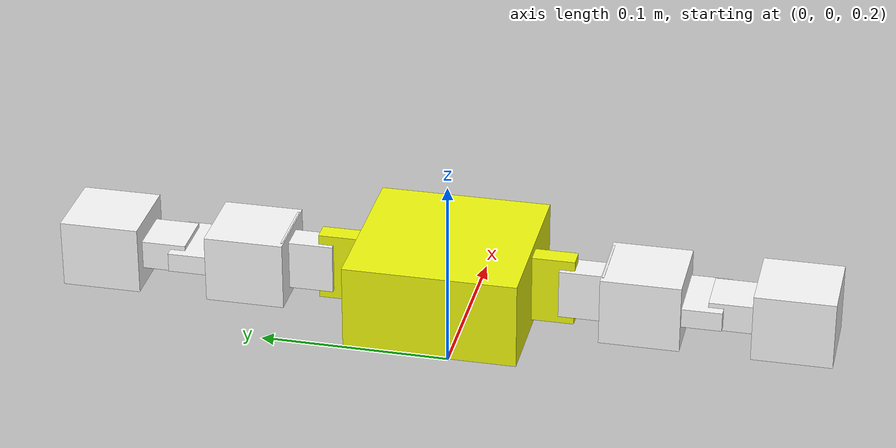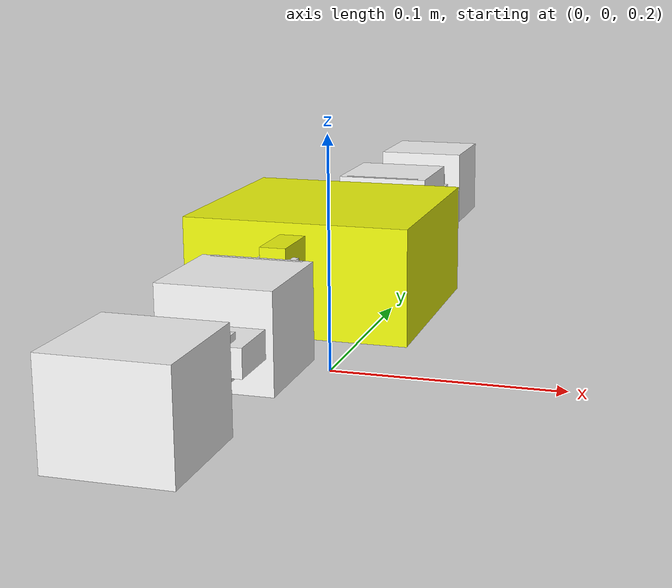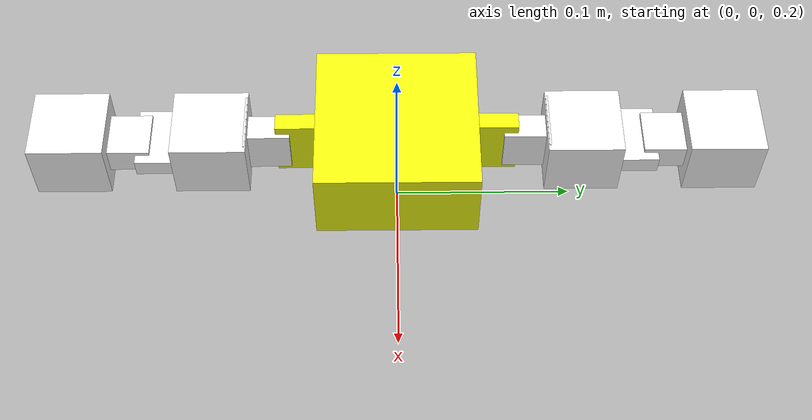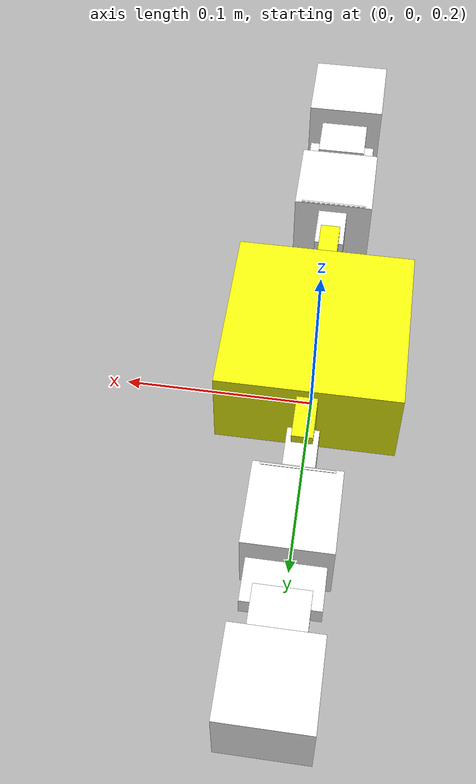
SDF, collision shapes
<?xml version="1.0" encoding="UTF-8"?>
<sdf version="1.6">
  <model name="example_snake">
    <pose>0.000000e+00 0.000000e+00 2.500000e-01 0.000000e+00 -0.000000e+00 0.000000e+00</pose>
    <joint name="component_S_ActiveHinge__joint" type="revolute">
      <pose>-9.430986e-18 3.110825e-02 -1.755849e-17 1.570796e+00 -3.330669e-16 -1.570796e+00</pose>
      <parent>Core</parent>
      <child>S_Leg</child>
      <axis>
        <xyz>0.000000e+00 1.000000e+00 0.000000e+00</xyz>
        <use_parent_model_frame>0</use_parent_model_frame>
        <limit>
          <lower>-7.853982e-01</lower>
          <upper>7.853982e-01</upper>
          <effort>1.765800e-01</effort>
          <velocity>5.235988e+00</velocity>
        </limit>
      </axis>
    </joint>
    <joint name="component_SNN_ActiveHinge__joint" type="revolute">
      <pose>-1.300223e-17 2.747656e-02 -1.539957e-17 -9.420555e-16 -6.280370e-16 -1.570796e+00</pose>
      <parent>S_Leg</parent>
      <child>SNN_Leg</child>
      <axis>
        <xyz>0.000000e+00 1.000000e+00 0.000000e+00</xyz>
        <use_parent_model_frame>0</use_parent_model_frame>
        <limit>
          <lower>-7.853982e-01</lower>
          <upper>7.853982e-01</upper>
          <effort>1.765800e-01</effort>
          <velocity>5.235988e+00</velocity>
        </limit>
      </axis>
    </joint>
    <joint name="component_N_ActiveHinge__joint" type="revolute">
      <pose>-8.717806e-18 -3.110825e-02 1.048457e-17 1.570796e+00 3.330669e-16 1.570796e+00</pose>
      <parent>Core</parent>
      <child>N_Leg</child>
      <axis>
        <xyz>0.000000e+00 1.000000e+00 0.000000e+00</xyz>
        <use_parent_model_frame>0</use_parent_model_frame>
        <limit>
          <lower>-7.853982e-01</lower>
          <upper>7.853982e-01</upper>
          <effort>1.765800e-01</effort>
          <velocity>5.235988e+00</velocity>
        </limit>
      </axis>
    </joint>
    <joint name="component_NNN_ActiveHinge__joint" type="revolute">
      <pose>1.194569e-17 -2.747656e-02 1.294222e-17 -4.710277e-16 4.710277e-16 1.570796e+00</pose>
      <parent>N_Leg</parent>
      <child>NNN_Leg</child>
      <axis>
        <xyz>0.000000e+00 1.000000e+00 0.000000e+00</xyz>
        <use_parent_model_frame>0</use_parent_model_frame>
        <limit>
          <lower>-7.853982e-01</lower>
          <upper>7.853982e-01</upper>
          <effort>1.765800e-01</effort>
          <velocity>5.235988e+00</velocity>
        </limit>
      </axis>
    </joint>
    <link name="Core">
      <pose>8.891294e-20 0.000000e+00 0.000000e+00 0.000000e+00 -0.000000e+00 0.000000e+00</pose>
      <self_collide>True</self_collide>
      <sensor name="core-imu_sensor" type="imu">
        <pose>-8.891294e-20 0.000000e+00 0.000000e+00 0.000000e+00 -0.000000e+00 0.000000e+00</pose>
        <always_on>True</always_on>
      </sensor>
      <visual name="component__CoreComponent__box_visual">
        <pose>-8.891294e-20 0.000000e+00 0.000000e+00 0.000000e+00 -0.000000e+00 0.000000e+00</pose>
        <material>
          <ambient>0.94 0.98 0.05 1.0</ambient>
          <diffuse>0.94 0.98 0.05 1.0</diffuse>
          <specular>0.1 0.1 0.1 1.0</specular>
        </material>
        <geometry>
          <mesh>
            <uri>model://rg_robot/meshes/CoreComponent.dae</uri>
          </mesh>
        </geometry>
      </visual>
      <collision name="component__CoreComponent__box_collision">
        <pose>-8.891294e-20 0.000000e+00 0.000000e+00 0.000000e+00 -0.000000e+00 0.000000e+00</pose>
        <surface>
          <contact>
            <ode>
              <kd>3.333333e+06</kd>
              <kp>9.000000e+04</kp>
            </ode>
          </contact>
          <friction>
            <ode>
              <mu>1.000000e+00</mu>
              <mu2>1.000000e+00</mu2>
              <slip1>1.000000e-02</slip1>
              <slip2>1.000000e-02</slip2>
            </ode>
            <bullet>
              <friction>1.000000e+00</friction>
              <friction2>1.000000e+00</friction2>
            </bullet>
          </friction>
        </surface>
        <geometry>
          <box>
            <size>8.900000e-02 8.900000e-02 4.500000e-02</size>
          </box>
        </geometry>
      </collision>
      <visual name="component_S_ActiveHinge__frame_visual">
        <pose>2.353578e-18 -5.550000e-02 6.106227e-19 1.570796e+00 -5.551115e-17 -1.570796e+00</pose>
        <material>
          <ambient>0.98 0.98 0.98 1.0</ambient>
          <diffuse>0.98 0.98 0.98 1.0</diffuse>
          <specular>0.1 0.1 0.1 1.0</specular>
        </material>
        <geometry>
          <mesh>
            <uri>model://rg_robot/meshes/ActiveHinge_Frame.dae</uri>
          </mesh>
        </geometry>
      </visual>
      <collision name="component_S_ActiveHinge__frame_collision">
        <pose>2.353578e-18 -5.550000e-02 6.106227e-19 1.570796e+00 -5.551115e-17 -1.570796e+00</pose>
        <surface>
          <contact>
            <ode>
              <kd>3.333333e+06</kd>
              <kp>9.000000e+04</kp>
            </ode>
          </contact>
          <friction>
            <ode>
              <mu>1.000000e+00</mu>
              <mu2>1.000000e+00</mu2>
              <slip1>1.000000e-02</slip1>
              <slip2>1.000000e-02</slip2>
            </ode>
            <bullet>
              <friction>1.000000e+00</friction>
              <friction2>1.000000e+00</friction2>
            </bullet>
          </friction>
        </surface>
        <geometry>
          <box>
            <size>2.200000e-02 3.575000e-02 1.000000e-02</size>
          </box>
        </geometry>
      </collision>
      <visual name="component_N_ActiveHinge__frame_visual">
        <pose>2.353578e-18 5.550000e-02 -6.106227e-19 1.570796e+00 5.551115e-17 1.570796e+00</pose>
        <material>
          <ambient>0.98 0.98 0.98 1.0</ambient>
          <diffuse>0.98 0.98 0.98 1.0</diffuse>
          <specular>0.1 0.1 0.1 1.0</specular>
        </material>
        <geometry>
          <mesh>
            <uri>model://rg_robot/meshes/ActiveHinge_Frame.dae</uri>
          </mesh>
        </geometry>
      </visual>
      <collision name="component_N_ActiveHinge__frame_collision">
        <pose>2.353578e-18 5.550000e-02 -6.106227e-19 1.570796e+00 5.551115e-17 1.570796e+00</pose>
        <surface>
          <contact>
            <ode>
              <kd>3.333333e+06</kd>
              <kp>9.000000e+04</kp>
            </ode>
          </contact>
          <friction>
            <ode>
              <mu>1.000000e+00</mu>
              <mu2>1.000000e+00</mu2>
              <slip1>1.000000e-02</slip1>
              <slip2>1.000000e-02</slip2>
            </ode>
            <bullet>
              <friction>1.000000e+00</friction>
              <friction2>1.000000e+00</friction2>
            </bullet>
          </friction>
        </surface>
        <geometry>
          <box>
            <size>2.200000e-02 3.575000e-02 1.000000e-02</size>
          </box>
        </geometry>
      </collision>
    </link>
    <link name="S_Leg">
      <pose>1.332232e-17 -9.125825e-02 1.946807e-17 0.000000e+00 -0.000000e+00 0.000000e+00</pose>
      <self_collide>True</self_collide>
      <visual name="component_S_ActiveHinge__servo_visual">
        <pose>-6.599917e-18 2.260825e-02 -1.472742e-17 1.570796e+00 -3.330669e-16 -1.570796e+00</pose>
        <material>
          <ambient>0.98 0.98 0.98 1.0</ambient>
          <diffuse>0.98 0.98 0.98 1.0</diffuse>
          <specular>0.1 0.1 0.1 1.0</specular>
        </material>
        <geometry>
          <mesh>
            <uri>model://rg_robot/meshes/ActiveCardanHinge_Servo_Holder.dae</uri>
          </mesh>
        </geometry>
      </visual>
      <collision name="component_S_ActiveHinge__servo_collision">
        <pose>-5.808883e-18 2.023325e-02 -1.393639e-17 1.570796e+00 -3.330669e-16 -1.570796e+00</pose>
        <surface>
          <contact>
            <ode>
              <kd>3.333333e+06</kd>
              <kp>9.000000e+04</kp>
            </ode>
          </contact>
          <friction>
            <ode>
              <mu>1.000000e+00</mu>
              <mu2>1.000000e+00</mu2>
              <slip1>1.000000e-02</slip1>
              <slip2>1.000000e-02</slip2>
            </ode>
            <bullet>
              <friction>1.000000e+00</friction>
              <friction2>1.000000e+00</friction2>
            </bullet>
          </friction>
        </surface>
        <geometry>
          <box>
            <size>2.450000e-02 2.575000e-02 1.500000e-02</size>
          </box>
        </geometry>
      </collision>
      <collision name="component_S_ActiveHinge__servo2_collision">
        <pose>-1.451258e-18 8.483254e-03 1.000000e-03 1.570796e+00 -3.330669e-16 -1.570796e+00</pose>
        <surface>
          <contact>
            <ode>
              <kd>3.333333e+06</kd>
              <kp>9.000000e+04</kp>
            </ode>
          </contact>
          <friction>
            <ode>
              <mu>1.000000e+00</mu>
              <mu2>1.000000e+00</mu2>
              <slip1>1.000000e-02</slip1>
              <slip2>1.000000e-02</slip2>
            </ode>
            <bullet>
              <friction>1.000000e+00</friction>
              <friction2>1.000000e+00</friction2>
            </bullet>
          </friction>
        </surface>
        <geometry>
          <box>
            <size>1.000000e-03 3.400000e-02 3.400000e-02</size>
          </box>
        </geometry>
      </collision>
      <visual name="component_SN_FixedBrick__box_visual">
        <pose>3.017390e-18 -1.101675e-02 7.019074e-18 8.881784e-16 -6.661338e-16 -3.141593e+00</pose>
        <material>
          <ambient>0.94 0.98 0.05 1.0</ambient>
          <diffuse>0.94 0.98 0.05 1.0</diffuse>
          <specular>0.1 0.1 0.1 1.0</specular>
        </material>
        <geometry>
          <mesh>
            <uri>model://rg_robot/meshes/FixedBrick.dae</uri>
          </mesh>
        </geometry>
      </visual>
      <collision name="component_SN_FixedBrick__box_collision">
        <pose>3.017390e-18 -1.101675e-02 7.019074e-18 8.881784e-16 -6.661338e-16 -3.141593e+00</pose>
        <surface>
          <contact>
            <ode>
              <kd>3.333333e+06</kd>
              <kp>9.000000e+04</kp>
            </ode>
          </contact>
          <friction>
            <ode>
              <mu>1.000000e+00</mu>
              <mu2>1.000000e+00</mu2>
              <slip1>1.000000e-02</slip1>
              <slip2>1.000000e-02</slip2>
            </ode>
            <bullet>
              <friction>1.000000e+00</friction>
              <friction2>1.000000e+00</friction2>
            </bullet>
          </friction>
        </surface>
        <geometry>
          <box>
            <size>4.100000e-02 4.100000e-02 3.550000e-02</size>
          </box>
        </geometry>
      </collision>
      <visual name="component_SNN_ActiveHinge__frame_visual">
        <pose>1.264857e-17 -4.101675e-02 3.166642e-17 -7.065416e-16 -7.065416e-16 -1.570796e+00</pose>
        <material>
          <ambient>0.98 0.98 0.98 1.0</ambient>
          <diffuse>0.98 0.98 0.98 1.0</diffuse>
          <specular>0.1 0.1 0.1 1.0</specular>
        </material>
        <geometry>
          <mesh>
            <uri>model://rg_robot/meshes/ActiveHinge_Frame.dae</uri>
          </mesh>
        </geometry>
      </visual>
      <collision name="component_SNN_ActiveHinge__frame_collision">
        <pose>1.264857e-17 -4.101675e-02 3.166642e-17 -7.065416e-16 -7.065416e-16 -1.570796e+00</pose>
        <surface>
          <contact>
            <ode>
              <kd>3.333333e+06</kd>
              <kp>9.000000e+04</kp>
            </ode>
          </contact>
          <friction>
            <ode>
              <mu>1.000000e+00</mu>
              <mu2>1.000000e+00</mu2>
              <slip1>1.000000e-02</slip1>
              <slip2>1.000000e-02</slip2>
            </ode>
            <bullet>
              <friction>1.000000e+00</friction>
              <friction2>1.000000e+00</friction2>
            </bullet>
          </friction>
        </surface>
        <geometry>
          <box>
            <size>2.200000e-02 3.575000e-02 1.000000e-02</size>
          </box>
        </geometry>
      </collision>
    </link>
    <link name="SNN_Leg">
      <pose>4.103813e-17 -1.644016e-01 6.952509e-17 0.000000e+00 -0.000000e+00 0.000000e+00</pose>
      <self_collide>True</self_collide>
      <visual name="component_SNN_ActiveHinge__servo_visual">
        <pose>-9.227468e-18 1.897656e-02 -1.006126e-17 -9.420555e-16 -6.280370e-16 -1.570796e+00</pose>
        <material>
          <ambient>0.98 0.98 0.98 1.0</ambient>
          <diffuse>0.98 0.98 0.98 1.0</diffuse>
          <specular>0.1 0.1 0.1 1.0</specular>
        </material>
        <geometry>
          <mesh>
            <uri>model://rg_robot/meshes/ActiveCardanHinge_Servo_Holder.dae</uri>
          </mesh>
        </geometry>
      </visual>
      <collision name="component_SNN_ActiveHinge__servo_collision">
        <pose>-8.172756e-18 1.660156e-02 -8.569672e-18 -9.420555e-16 -6.280370e-16 -1.570796e+00</pose>
        <surface>
          <contact>
            <ode>
              <kd>3.333333e+06</kd>
              <kp>9.000000e+04</kp>
            </ode>
          </contact>
          <friction>
            <ode>
              <mu>1.000000e+00</mu>
              <mu2>1.000000e+00</mu2>
              <slip1>1.000000e-02</slip1>
              <slip2>1.000000e-02</slip2>
            </ode>
            <bullet>
              <friction>1.000000e+00</friction>
              <friction2>1.000000e+00</friction2>
            </bullet>
          </friction>
        </surface>
        <geometry>
          <box>
            <size>2.450000e-02 2.575000e-02 1.500000e-02</size>
          </box>
        </geometry>
      </collision>
      <collision name="component_SNN_ActiveHinge__servo2_collision">
        <pose>1.000000e-03 4.851562e-03 -2.132293e-18 -9.420555e-16 -6.280370e-16 -1.570796e+00</pose>
        <surface>
          <contact>
            <ode>
              <kd>3.333333e+06</kd>
              <kp>9.000000e+04</kp>
            </ode>
          </contact>
          <friction>
            <ode>
              <mu>1.000000e+00</mu>
              <mu2>1.000000e+00</mu2>
              <slip1>1.000000e-02</slip1>
              <slip2>1.000000e-02</slip2>
            </ode>
            <bullet>
              <friction>1.000000e+00</friction>
              <friction2>1.000000e+00</friction2>
            </bullet>
          </friction>
        </surface>
        <geometry>
          <box>
            <size>1.000000e-03 3.400000e-02 3.400000e-02</size>
          </box>
        </geometry>
      </collision>
      <visual name="component_SNNN_FixedBrick__box_visual">
        <pose>7.211255e-18 -1.464844e-02 7.561476e-18 4.440892e-16 -9.420555e-16 -3.141593e+00</pose>
        <material>
          <ambient>0.94 0.98 0.05 1.0</ambient>
          <diffuse>0.94 0.98 0.05 1.0</diffuse>
          <specular>0.1 0.1 0.1 1.0</specular>
        </material>
        <geometry>
          <mesh>
            <uri>model://rg_robot/meshes/FixedBrick.dae</uri>
          </mesh>
        </geometry>
      </visual>
      <collision name="component_SNNN_FixedBrick__box_collision">
        <pose>7.211255e-18 -1.464844e-02 7.561476e-18 4.440892e-16 -9.420555e-16 -3.141593e+00</pose>
        <surface>
          <contact>
            <ode>
              <kd>3.333333e+06</kd>
              <kp>9.000000e+04</kp>
            </ode>
          </contact>
          <friction>
            <ode>
              <mu>1.000000e+00</mu>
              <mu2>1.000000e+00</mu2>
              <slip1>1.000000e-02</slip1>
              <slip2>1.000000e-02</slip2>
            </ode>
            <bullet>
              <friction>1.000000e+00</friction>
              <friction2>1.000000e+00</friction2>
            </bullet>
          </friction>
        </surface>
        <geometry>
          <box>
            <size>4.100000e-02 4.100000e-02 3.550000e-02</size>
          </box>
        </geometry>
      </collision>
    </link>
    <link name="N_Leg">
      <pose>1.260914e-17 9.125825e-02 -1.239415e-17 0.000000e+00 -0.000000e+00 0.000000e+00</pose>
      <self_collide>True</self_collide>
      <visual name="component_N_ActiveHinge__servo_visual">
        <pose>-5.886737e-18 -2.260825e-02 7.653500e-18 1.570796e+00 3.330669e-16 1.570796e+00</pose>
        <material>
          <ambient>0.98 0.98 0.98 1.0</ambient>
          <diffuse>0.98 0.98 0.98 1.0</diffuse>
          <specular>0.1 0.1 0.1 1.0</specular>
        </material>
        <geometry>
          <mesh>
            <uri>model://rg_robot/meshes/ActiveCardanHinge_Servo_Holder.dae</uri>
          </mesh>
        </geometry>
      </visual>
      <collision name="component_N_ActiveHinge__servo_collision">
        <pose>-5.095703e-18 -2.023325e-02 6.862466e-18 1.570796e+00 3.330669e-16 1.570796e+00</pose>
        <surface>
          <contact>
            <ode>
              <kd>3.333333e+06</kd>
              <kp>9.000000e+04</kp>
            </ode>
          </contact>
          <friction>
            <ode>
              <mu>1.000000e+00</mu>
              <mu2>1.000000e+00</mu2>
              <slip1>1.000000e-02</slip1>
              <slip2>1.000000e-02</slip2>
            </ode>
            <bullet>
              <friction>1.000000e+00</friction>
              <friction2>1.000000e+00</friction2>
            </bullet>
          </friction>
        </surface>
        <geometry>
          <box>
            <size>2.450000e-02 2.575000e-02 1.500000e-02</size>
          </box>
        </geometry>
      </collision>
      <collision name="component_N_ActiveHinge__servo2_collision">
        <pose>-1.626256e-18 -8.483254e-03 1.000000e-03 1.570796e+00 3.330669e-16 1.570796e+00</pose>
        <surface>
          <contact>
            <ode>
              <kd>3.333333e+06</kd>
              <kp>9.000000e+04</kp>
            </ode>
          </contact>
          <friction>
            <ode>
              <mu>1.000000e+00</mu>
              <mu2>1.000000e+00</mu2>
              <slip1>1.000000e-02</slip1>
              <slip2>1.000000e-02</slip2>
            </ode>
            <bullet>
              <friction>1.000000e+00</friction>
              <friction2>1.000000e+00</friction2>
            </bullet>
          </friction>
        </surface>
        <geometry>
          <box>
            <size>1.000000e-03 3.400000e-02 3.400000e-02</size>
          </box>
        </geometry>
      </collision>
      <visual name="component_NN_FixedBrick__box_visual">
        <pose>3.245202e-18 1.101675e-02 -3.545875e-18 -3.330669e-16 -6.661338e-16 -2.242545e-16</pose>
        <material>
          <ambient>0.94 0.98 0.05 1.0</ambient>
          <diffuse>0.94 0.98 0.05 1.0</diffuse>
          <specular>0.1 0.1 0.1 1.0</specular>
        </material>
        <geometry>
          <mesh>
            <uri>model://rg_robot/meshes/FixedBrick.dae</uri>
          </mesh>
        </geometry>
      </visual>
      <collision name="component_NN_FixedBrick__box_collision">
        <pose>3.245202e-18 1.101675e-02 -3.545875e-18 -3.330669e-16 -6.661338e-16 -2.242545e-16</pose>
        <surface>
          <contact>
            <ode>
              <kd>3.333333e+06</kd>
              <kp>9.000000e+04</kp>
            </ode>
          </contact>
          <friction>
            <ode>
              <mu>1.000000e+00</mu>
              <mu2>1.000000e+00</mu2>
              <slip1>1.000000e-02</slip1>
              <slip2>1.000000e-02</slip2>
            </ode>
            <bullet>
              <friction>1.000000e+00</friction>
              <friction2>1.000000e+00</friction2>
            </bullet>
          </friction>
        </surface>
        <geometry>
          <box>
            <size>4.100000e-02 4.100000e-02 3.550000e-02</size>
          </box>
        </geometry>
      </collision>
      <visual name="component_NNN_ActiveHinge__frame_visual">
        <pose>7.506038e-18 4.101675e-02 -1.505545e-17 -4.710277e-16 4.710277e-16 1.570796e+00</pose>
        <material>
          <ambient>0.98 0.98 0.98 1.0</ambient>
          <diffuse>0.98 0.98 0.98 1.0</diffuse>
          <specular>0.1 0.1 0.1 1.0</specular>
        </material>
        <geometry>
          <mesh>
            <uri>model://rg_robot/meshes/ActiveHinge_Frame.dae</uri>
          </mesh>
        </geometry>
      </visual>
      <collision name="component_NNN_ActiveHinge__frame_collision">
        <pose>7.506038e-18 4.101675e-02 -1.505545e-17 -4.710277e-16 4.710277e-16 1.570796e+00</pose>
        <surface>
          <contact>
            <ode>
              <kd>3.333333e+06</kd>
              <kp>9.000000e+04</kp>
            </ode>
          </contact>
          <friction>
            <ode>
              <mu>1.000000e+00</mu>
              <mu2>1.000000e+00</mu2>
              <slip1>1.000000e-02</slip1>
              <slip2>1.000000e-02</slip2>
            </ode>
            <bullet>
              <friction>1.000000e+00</friction>
              <friction2>1.000000e+00</friction2>
            </bullet>
          </friction>
        </surface>
        <geometry>
          <box>
            <size>2.200000e-02 3.575000e-02 1.000000e-02</size>
          </box>
        </geometry>
      </collision>
    </link>
    <link name="NNN_Leg">
      <pose>6.504156e-18 1.644016e-01 -4.258211e-17 0.000000e+00 -0.000000e+00 0.000000e+00</pose>
      <self_collide>True</self_collide>
      <visual name="component_NNN_ActiveHinge__servo_visual">
        <pose>8.170927e-18 -1.897656e-02 8.938487e-18 -4.710277e-16 4.710277e-16 1.570796e+00</pose>
        <material>
          <ambient>0.98 0.98 0.98 1.0</ambient>
          <diffuse>0.98 0.98 0.98 1.0</diffuse>
          <specular>0.1 0.1 0.1 1.0</specular>
        </material>
        <geometry>
          <mesh>
            <uri>model://rg_robot/meshes/ActiveCardanHinge_Servo_Holder.dae</uri>
          </mesh>
        </geometry>
      </visual>
      <collision name="component_NNN_ActiveHinge__servo_collision">
        <pose>7.116215e-18 -1.660156e-02 7.819796e-18 -4.710277e-16 4.710277e-16 1.570796e+00</pose>
        <surface>
          <contact>
            <ode>
              <kd>3.333333e+06</kd>
              <kp>9.000000e+04</kp>
            </ode>
          </contact>
          <friction>
            <ode>
              <mu>1.000000e+00</mu>
              <mu2>1.000000e+00</mu2>
              <slip1>1.000000e-02</slip1>
              <slip2>1.000000e-02</slip2>
            </ode>
            <bullet>
              <friction>1.000000e+00</friction>
              <friction2>1.000000e+00</friction2>
            </bullet>
          </friction>
        </surface>
        <geometry>
          <box>
            <size>2.450000e-02 2.575000e-02 1.500000e-02</size>
          </box>
        </geometry>
      </collision>
      <collision name="component_NNN_ActiveHinge__servo2_collision">
        <pose>-1.000000e-03 -4.851562e-03 1.814193e-18 -4.710277e-16 4.710277e-16 1.570796e+00</pose>
        <surface>
          <contact>
            <ode>
              <kd>3.333333e+06</kd>
              <kp>9.000000e+04</kp>
            </ode>
          </contact>
          <friction>
            <ode>
              <mu>1.000000e+00</mu>
              <mu2>1.000000e+00</mu2>
              <slip1>1.000000e-02</slip1>
              <slip2>1.000000e-02</slip2>
            </ode>
            <bullet>
              <friction>1.000000e+00</friction>
              <friction2>1.000000e+00</friction2>
            </bullet>
          </friction>
        </surface>
        <geometry>
          <box>
            <size>1.000000e-03 3.400000e-02 3.400000e-02</size>
          </box>
        </geometry>
      </collision>
      <visual name="component_NNNN_FixedBrick__box_visual">
        <pose>-6.279013e-18 1.464844e-02 -6.899820e-18 -4.710277e-16 -4.440892e-16 4.186913e-16</pose>
        <material>
          <ambient>0.94 0.98 0.05 1.0</ambient>
          <diffuse>0.94 0.98 0.05 1.0</diffuse>
          <specular>0.1 0.1 0.1 1.0</specular>
        </material>
        <geometry>
          <mesh>
            <uri>model://rg_robot/meshes/FixedBrick.dae</uri>
          </mesh>
        </geometry>
      </visual>
      <collision name="component_NNNN_FixedBrick__box_collision">
        <pose>-6.279013e-18 1.464844e-02 -6.899820e-18 -4.710277e-16 -4.440892e-16 4.186913e-16</pose>
        <surface>
          <contact>
            <ode>
              <kd>3.333333e+06</kd>
              <kp>9.000000e+04</kp>
            </ode>
          </contact>
          <friction>
            <ode>
              <mu>1.000000e+00</mu>
              <mu2>1.000000e+00</mu2>
              <slip1>1.000000e-02</slip1>
              <slip2>1.000000e-02</slip2>
            </ode>
            <bullet>
              <friction>1.000000e+00</friction>
              <friction2>1.000000e+00</friction2>
            </bullet>
          </friction>
        </surface>
        <geometry>
          <box>
            <size>4.100000e-02 4.100000e-02 3.550000e-02</size>
          </box>
        </geometry>
      </collision>
    </link>
    <plugin filename="libRobotControlPlugin.so" name="robot_controller">
      <rv:robot_config xmlns:rv="https://github.com/ci-group/revolve">
        <rv:update_rate>8.000000e+00</rv:update_rate>
        <rv:brain>
          <rv:learner evaluation_rate="30.0" type="rlpower"/>
          <rv:controller type="spline"/>
          <rv:sensors>
            <rv:sensor id="Core_sensor" link="Core" part_id="Core" sensor="core-imu_sensor" type="imu"/>
          </rv:sensors>
          <rv:actuators>
            <rv:servomotor coordinates="-1;0" id="Leg00Joint__rotate" joint="component_S_ActiveHinge__joint" part_id="Leg00Joint" part_name="component_S_ActiveHinge__joint" type="position">
              <rv:pid>
                <rv:p>9.000000e-01</rv:p>
                <rv:i>0.000000e+00</rv:i>
                <rv:d>0.000000e+00</rv:d>
                <rv:i_max>0.000000e+00</rv:i_max>
                <rv:i_min>0.000000e+00</rv:i_min>
              </rv:pid>
            </rv:servomotor>
            <rv:servomotor coordinates="-3;0" id="Leg01Joint__rotate" joint="component_SNN_ActiveHinge__joint" part_id="Leg01Joint" part_name="component_SNN_ActiveHinge__joint" type="position">
              <rv:pid>
                <rv:p>9.000000e-01</rv:p>
                <rv:i>0.000000e+00</rv:i>
                <rv:d>0.000000e+00</rv:d>
                <rv:i_max>0.000000e+00</rv:i_max>
                <rv:i_min>0.000000e+00</rv:i_min>
              </rv:pid>
            </rv:servomotor>
            <rv:servomotor coordinates="1;0" id="Leg10Joint__rotate" joint="component_N_ActiveHinge__joint" part_id="Leg10Joint" part_name="component_N_ActiveHinge__joint" type="position">
              <rv:pid>
                <rv:p>9.000000e-01</rv:p>
                <rv:i>0.000000e+00</rv:i>
                <rv:d>0.000000e+00</rv:d>
                <rv:i_max>0.000000e+00</rv:i_max>
                <rv:i_min>0.000000e+00</rv:i_min>
              </rv:pid>
            </rv:servomotor>
            <rv:servomotor coordinates="3;0" id="Leg11Joint__rotate" joint="component_NNN_ActiveHinge__joint" part_id="Leg11Joint" part_name="component_NNN_ActiveHinge__joint" type="position">
              <rv:pid>
                <rv:p>9.000000e-01</rv:p>
                <rv:i>0.000000e+00</rv:i>
                <rv:d>0.000000e+00</rv:d>
                <rv:i_max>0.000000e+00</rv:i_max>
                <rv:i_min>0.000000e+00</rv:i_min>
              </rv:pid>
            </rv:servomotor>
          </rv:actuators>
        </rv:brain>
      </rv:robot_config>
    </plugin>
  </model>
</sdf>
